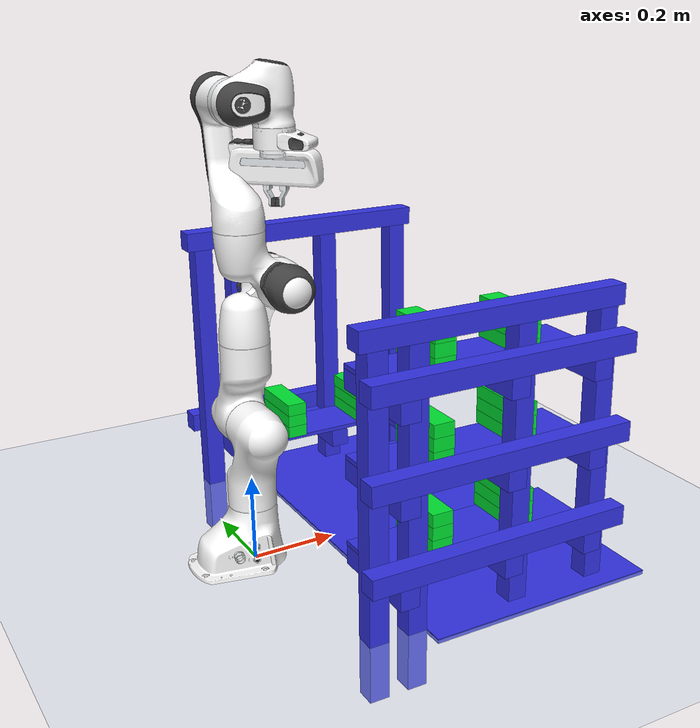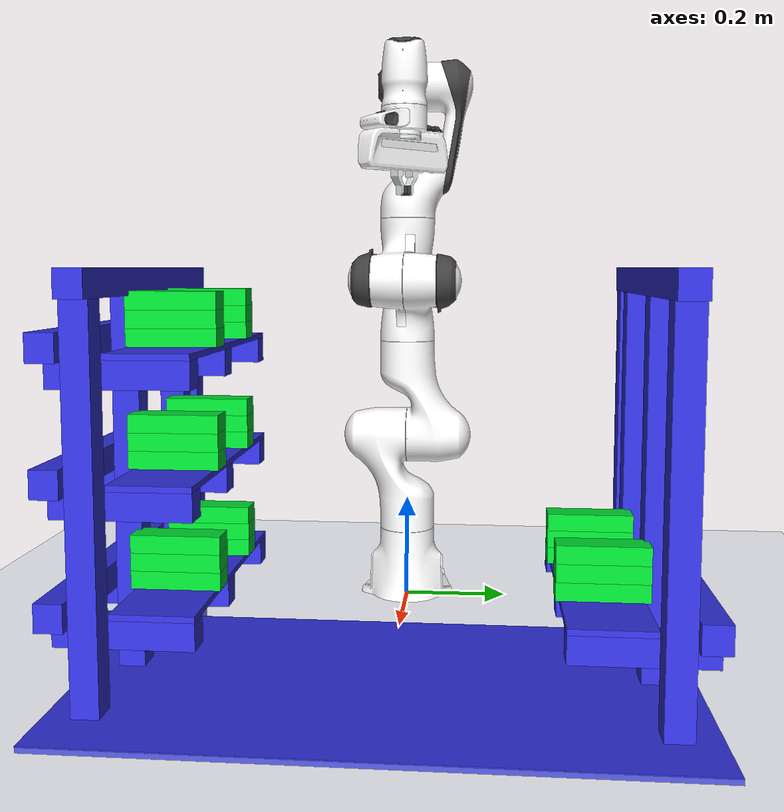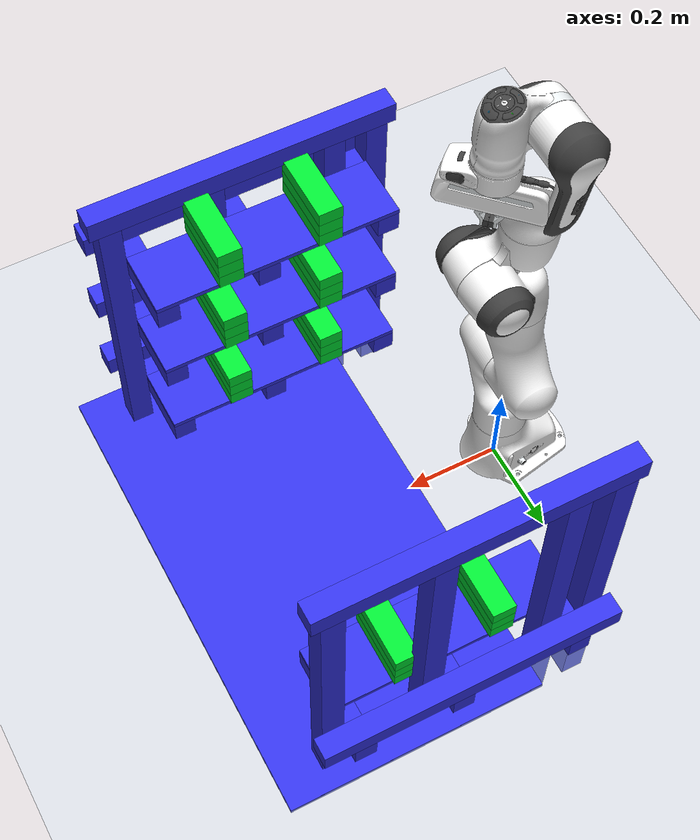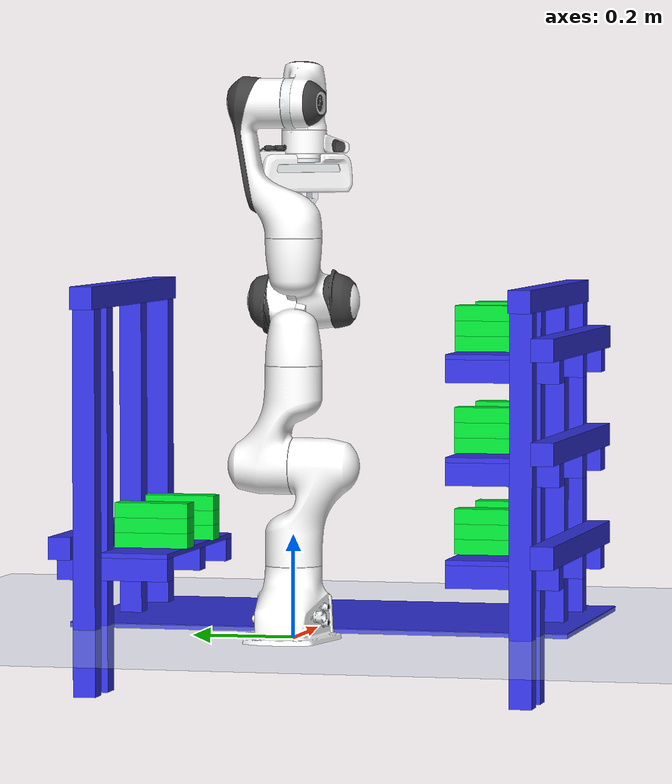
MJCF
<?xml version='1.0' encoding='utf-8'?>
<mujoco model="panda">
  <compiler angle="radian" meshdir="assets" autolimits="true" />

  <option integrator="implicit" />
  <option gravity="0 0 -9.81" />

  <default>
    <default class="panda">
      <material specular="0.5" shininess="0.25" />
      <joint armature="0.1" damping="1" axis="0 0 1" range="-2.8973 2.8973" />
      <general dyntype="none" biastype="none" ctrlrange="-87 87" forcerange="-87 87" />
      <default class="finger">
        <joint axis="0 1 0" type="slide" range="0 0.04" />
      </default>

      <default class="visual">
        <geom type="mesh" contype="0" conaffinity="0" group="2" />
      </default>
      <default class="collision">
        <geom type="mesh" group="3" />
        <default class="fingertip_pad_collision_1">
          <geom type="box" size="0.0085 0.004 0.0085" pos="0 0.0055 0.0445" />
        </default>
        <default class="fingertip_pad_collision_2">
          <geom type="box" size="0.003 0.002 0.003" pos="0.0055 0.002 0.05" />
        </default>
        <default class="fingertip_pad_collision_3">
          <geom type="box" size="0.003 0.002 0.003" pos="-0.0055 0.002 0.05" />
        </default>
        <default class="fingertip_pad_collision_4">
          <geom type="box" size="0.003 0.002 0.0035" pos="0.0055 0.002 0.0395" />
        </default>
        <default class="fingertip_pad_collision_5">
          <geom type="box" size="0.003 0.002 0.0035" pos="-0.0055 0.002 0.0395" />
        </default>
      </default>
    </default>
  </default>

  <asset>
    <material class="panda" name="white" rgba="1 1 1 1" />
    <material class="panda" name="off_white" rgba="0.901961 0.921569 0.929412 1" />
    <material class="panda" name="black" rgba="0.25 0.25 0.25 1" />
    <material class="panda" name="green" rgba="0 1 0 1" />
    <material class="panda" name="light_blue" rgba="0.039216 0.541176 0.780392 1" />

    <mesh name="link0_c" file="link0.stl" />
    <mesh name="link1_c" file="link1.stl" />
    <mesh name="link2_c" file="link2.stl" />
    <mesh name="link3_c" file="link3.stl" />
    <mesh name="link4_c" file="link4.stl" />
    <mesh name="link5_c0" file="link5_collision_0.obj" />
    <mesh name="link5_c1" file="link5_collision_1.obj" />
    <mesh name="link5_c2" file="link5_collision_2.obj" />
    <mesh name="link6_c" file="link6.stl" />
    <mesh name="link7_c" file="link7.stl" />
    <mesh name="hand_c" file="hand.stl" />

    <mesh file="link0_0.obj" />
    <mesh file="link0_1.obj" />
    <mesh file="link0_2.obj" />
    <mesh file="link0_3.obj" />
    <mesh file="link0_4.obj" />
    <mesh file="link0_5.obj" />
    <mesh file="link0_7.obj" />
    <mesh file="link0_8.obj" />
    <mesh file="link0_9.obj" />
    <mesh file="link0_10.obj" />
    <mesh file="link0_11.obj" />
    <mesh file="link1.obj" />
    <mesh file="link2.obj" />
    <mesh file="link3_0.obj" />
    <mesh file="link3_1.obj" />
    <mesh file="link3_2.obj" />
    <mesh file="link3_3.obj" />
    <mesh file="link4_0.obj" />
    <mesh file="link4_1.obj" />
    <mesh file="link4_2.obj" />
    <mesh file="link4_3.obj" />
    <mesh file="link5_0.obj" />
    <mesh file="link5_1.obj" />
    <mesh file="link5_2.obj" />
    <mesh file="link6_0.obj" />
    <mesh file="link6_1.obj" />
    <mesh file="link6_2.obj" />
    <mesh file="link6_3.obj" />
    <mesh file="link6_4.obj" />
    <mesh file="link6_5.obj" />
    <mesh file="link6_6.obj" />
    <mesh file="link6_7.obj" />
    <mesh file="link6_8.obj" />
    <mesh file="link6_9.obj" />
    <mesh file="link6_10.obj" />
    <mesh file="link6_11.obj" />
    <mesh file="link6_12.obj" />
    <mesh file="link6_13.obj" />
    <mesh file="link6_14.obj" />
    <mesh file="link6_15.obj" />
    <mesh file="link6_16.obj" />
    <mesh file="link7_0.obj" />
    <mesh file="link7_1.obj" />
    <mesh file="link7_2.obj" />
    <mesh file="link7_3.obj" />
    <mesh file="link7_4.obj" />
    <mesh file="link7_5.obj" />
    <mesh file="link7_6.obj" />
    <mesh file="link7_7.obj" />
    <mesh file="hand_0.obj" />
    <mesh file="hand_1.obj" />
    <mesh file="hand_2.obj" />
    <mesh file="hand_3.obj" />
    <mesh file="hand_4.obj" />
    <mesh file="finger_0.obj" />
    <mesh file="finger_1.obj" />
  </asset>

  <worldbody>
    <light name="top" pos="0 0 2" mode="trackcom" />
    <body name="link0" childclass="panda">
      <inertial mass="0.629769" pos="-0.041018 -0.00014 0.049974" fullinertia="0.00315 0.00388 0.004285 8.2904e-7 0.00015 8.2299e-6" />
      <geom mesh="link0_0" material="off_white" class="visual" />
      <geom mesh="link0_1" material="black" class="visual" />
      <geom mesh="link0_2" material="off_white" class="visual" />
      <geom mesh="link0_3" material="black" class="visual" />
      <geom mesh="link0_4" material="off_white" class="visual" />
      <geom mesh="link0_5" material="black" class="visual" />
      <geom mesh="link0_7" material="white" class="visual" />
      <geom mesh="link0_8" material="white" class="visual" />
      <geom mesh="link0_9" material="black" class="visual" />
      <geom mesh="link0_10" material="off_white" class="visual" />
      <geom mesh="link0_11" material="white" class="visual" />
      <geom mesh="link0_c" class="collision" />
      <body name="link1" pos="0 0 0.333">
        <inertial mass="4.970684" pos="0.003875 0.002081 -0.04762" fullinertia="0.70337 0.70661 0.0091170 -0.00013900 0.0067720 0.019169" />
        <joint name="joint1" />
        <geom material="white" mesh="link1" class="visual" />
        <geom mesh="link1_c" class="collision" />
        <body name="link2" quat="1 -1 0 0">
          <inertial mass="0.646926" pos="-0.003141 -0.02872 0.003495" fullinertia="0.0079620 2.8110e-2 2.5995e-2 -3.925e-3 1.0254e-2 7.04e-4" />
          <joint name="joint2" range="-1.7628 1.7628" />
          <geom material="white" mesh="link2" class="visual" />
          <geom mesh="link2_c" class="collision" />
          <body name="link3" pos="0 -0.316 0" quat="1 1 0 0">
            <joint name="joint3" />
            <inertial mass="3.228604" pos="2.7518e-2 3.9252e-2 -6.6502e-2" fullinertia="3.7242e-2 3.6155e-2 1.083e-2 -4.761e-3 -1.1396e-2 -1.2805e-2" />
            <geom mesh="link3_0" material="white" class="visual" />
            <geom mesh="link3_1" material="white" class="visual" />
            <geom mesh="link3_2" material="white" class="visual" />
            <geom mesh="link3_3" material="black" class="visual" />
            <geom mesh="link3_c" class="collision" />
            <body name="link4" pos="0.0825 0 0" quat="1 1 0 0">
              <inertial mass="3.587895" pos="-5.317e-2 1.04419e-1 2.7454e-2" fullinertia="2.5853e-2 1.9552e-2 2.8323e-2 7.796e-3 -1.332e-3 8.641e-3" />
              <joint name="joint4" range="-3.0718 -0.0698" />
              <geom mesh="link4_0" material="white" class="visual" />
              <geom mesh="link4_1" material="white" class="visual" />
              <geom mesh="link4_2" material="black" class="visual" />
              <geom mesh="link4_3" material="white" class="visual" />
              <geom mesh="link4_c" class="collision" />
              <body name="link5" pos="-0.0825 0.384 0" quat="1 -1 0 0">
                <inertial mass="1.225946" pos="-1.1953e-2 4.1065e-2 -3.8437e-2" fullinertia="3.5549e-2 2.9474e-2 8.627e-3 -2.117e-3 -4.037e-3 2.29e-4" />
                <joint name="joint5" />
                <geom mesh="link5_0" material="black" class="visual" />
                <geom mesh="link5_1" material="white" class="visual" />
                <geom mesh="link5_2" material="white" class="visual" />
                <geom mesh="link5_c0" class="collision" />
                <geom mesh="link5_c1" class="collision" />
                <geom mesh="link5_c2" class="collision" />
                <body name="link6" quat="1 1 0 0">
                  <inertial mass="1.666555" pos="6.0149e-2 -1.4117e-2 -1.0517e-2" fullinertia="1.964e-3 4.354e-3 5.433e-3 1.09e-4 -1.158e-3 3.41e-4" />
                  <joint name="joint6" range="-0.0175 3.7525" />
                  <geom mesh="link6_0" material="off_white" class="visual" />
                  <geom mesh="link6_1" material="white" class="visual" />
                  <geom mesh="link6_2" material="black" class="visual" />
                  <geom mesh="link6_3" material="white" class="visual" />
                  <geom mesh="link6_4" material="white" class="visual" />
                  <geom mesh="link6_5" material="white" class="visual" />
                  <geom mesh="link6_6" material="white" class="visual" />
                  <geom mesh="link6_7" material="light_blue" class="visual" />
                  <geom mesh="link6_8" material="light_blue" class="visual" />
                  <geom mesh="link6_9" material="black" class="visual" />
                  <geom mesh="link6_10" material="black" class="visual" />
                  <geom mesh="link6_11" material="white" class="visual" />
                  <geom mesh="link6_12" material="green" class="visual" />
                  <geom mesh="link6_13" material="white" class="visual" />
                  <geom mesh="link6_14" material="black" class="visual" />
                  <geom mesh="link6_15" material="black" class="visual" />
                  <geom mesh="link6_16" material="white" class="visual" />
                  <geom mesh="link6_c" class="collision" />
                  <body name="link7" pos="0.088 0 0" quat="1 1 0 0">
                    <inertial mass="7.35522e-01" pos="1.0517e-2 -4.252e-3 6.1597e-2" fullinertia="1.2516e-2 1.0027e-2 4.815e-3 -4.28e-4 -1.196e-3 -7.41e-4" />
                    <joint name="joint7" />
                    <geom mesh="link7_0" material="white" class="visual" />
                    <geom mesh="link7_1" material="black" class="visual" />
                    <geom mesh="link7_2" material="black" class="visual" />
                    <geom mesh="link7_3" material="black" class="visual" />
                    <geom mesh="link7_4" material="black" class="visual" />
                    <geom mesh="link7_5" material="black" class="visual" />
                    <geom mesh="link7_6" material="black" class="visual" />
                    <geom mesh="link7_7" material="white" class="visual" />
                    <geom mesh="link7_c" class="collision" />
                    <body name="hand" pos="0 0 0.107" quat="0.9238795 0 0 -0.3826834">
                      <inertial mass="0.73" pos="-0.01 0 0.03" diaginertia="0.001 0.0025 0.0017" />
                      <geom mesh="hand_0" material="off_white" class="visual" />
                      <geom mesh="hand_1" material="black" class="visual" />
                      <geom mesh="hand_2" material="black" class="visual" />
                      <geom mesh="hand_3" material="white" class="visual" />
                      <geom mesh="hand_4" material="off_white" class="visual" />
                      <geom mesh="hand_c" class="collision" />
                      <body name="left_finger" pos="0 0 0.0584">
                        <inertial mass="0.015" pos="0 0 0" diaginertia="2.375e-6 2.375e-6 7.5e-7" />
                        <joint name="finger_joint1" class="finger" />
                        <geom mesh="finger_0" material="off_white" class="visual" />
                        <geom mesh="finger_1" material="black" class="visual" />
                        <geom mesh="finger_0" class="collision" />
                        <geom class="fingertip_pad_collision_1" />
                        <geom class="fingertip_pad_collision_2" />
                        <geom class="fingertip_pad_collision_3" />
                        <geom class="fingertip_pad_collision_4" />
                        <geom class="fingertip_pad_collision_5" />
                      </body>
                      <body name="right_finger" pos="0 0 0.0584" quat="0 0 0 1">
                        <inertial mass="0.015" pos="0 0 0" diaginertia="2.375e-6 2.375e-6 7.5e-7" />
                        <joint name="finger_joint2" class="finger" />
                        <geom mesh="finger_0" material="off_white" class="visual" />
                        <geom mesh="finger_1" material="black" class="visual" />
                        <geom mesh="finger_0" class="collision" />
                        <geom class="fingertip_pad_collision_1" />
                        <geom class="fingertip_pad_collision_2" />
                        <geom class="fingertip_pad_collision_3" />
                        <geom class="fingertip_pad_collision_4" />
                        <geom class="fingertip_pad_collision_5" />
                      </body>
                    </body>
                  </body>
                </body>
              </body>
            </body>
          </body>
        </body>
      </body>
    </body>
    <geom name="ground" type="plane" size="3 3 0.1" rgba="0.8 0.9 1 1" />

  <body name="TablePlane" pos="0.4600000000000001 0.0 -0.005"><geom type="box" density="20" size="0.275 0.504 0.0051" rgba="0.2 0.2 0.9 1.0" /></body><body name="LShelfDistal" pos="0.6225000000000002 0.4365 0.315"><geom type="box" density="20" size="0.0225 0.0225 0.315" rgba="0.2 0.2 0.9 1.0" /></body><body name="LShelfProximal" pos="0.16250000000000006 0.4365 0.2475"><geom type="box" density="20" size="0.0225 0.0225 0.3825" rgba="0.2 0.2 0.9 1.0" /></body><body name="LShelfBack" pos="0.07250000000000006 0.4365 0.2475"><geom type="box" density="20" size="0.0225 0.0225 0.3825" rgba="0.2 0.2 0.9 1.0" /></body><body name="LShelfMid" pos="0.4150000000000001 0.4365 0.315"><geom type="box" density="20" size="0.0225 0.0225 0.315" rgba="0.2 0.2 0.9 1.0" /></body><body name="LShelfArch" pos="0.3475000000000001 0.4365 0.6525"><geom type="box" density="20" size="0.315 0.0225 0.0225" rgba="0.2 0.2 0.9 1.0" /></body><body name="LShelfBottom" pos="0.3475000000000001 0.34650000000000003 0.14250000000000002"><geom type="box" density="20" size="0.2525 0.0675 0.005" rgba="0.2 0.2 0.9 1.0" /></body><body name="LShelfBottomSupp1" pos="0.11750000000000006 0.3915 0.11500000000000002"><geom type="box" density="20" size="0.0225 0.1125 0.0225" rgba="0.2 0.2 0.9 1.0" /></body><body name="LShelfBottomSupp2" pos="0.3700000000000001 0.3915 0.11500000000000002"><geom type="box" density="20" size="0.0225 0.1125 0.0225" rgba="0.2 0.2 0.9 1.0" /></body><body name="LShelfBottomSupp3" pos="0.5775000000000001 0.3915 0.11500000000000002"><geom type="box" density="20" size="0.0225 0.1125 0.0225" rgba="0.2 0.2 0.9 1.0" /></body><body name="LShelfBottomSuppB" pos="0.3475000000000001 0.4815 0.16"><geom type="box" density="20" size="0.315 0.0225 0.0225" rgba="0.2 0.2 0.9 1.0" /></body><body name="RShelfDistal" pos="0.6225000000000002 -0.4365 0.315"><geom type="box" density="20" size="0.0225 0.0225 0.315" rgba="0.2 0.2 0.9 1.0" /></body><body name="RShelfProximal" pos="0.16250000000000006 -0.4365 0.2475"><geom type="box" density="20" size="0.0225 0.0225 0.3825" rgba="0.2 0.2 0.9 1.0" /></body><body name="RShelfBack" pos="0.07250000000000006 -0.4365 0.2475"><geom type="box" density="20" size="0.0225 0.0225 0.3825" rgba="0.2 0.2 0.9 1.0" /></body><body name="RShelfMid" pos="0.4150000000000001 -0.4365 0.315"><geom type="box" density="20" size="0.0225 0.0225 0.315" rgba="0.2 0.2 0.9 1.0" /></body><body name="RShelfArch" pos="0.3475000000000001 -0.4365 0.6525"><geom type="box" density="20" size="0.315 0.0225 0.0225" rgba="0.2 0.2 0.9 1.0" /></body><body name="RShelfBottom" pos="0.3475000000000001 -0.34650000000000003 0.14250000000000002"><geom type="box" density="20" size="0.2525 0.0675 0.005" rgba="0.2 0.2 0.9 1.0" /></body><body name="RShelfBottomSupp1" pos="0.11750000000000006 -0.3915 0.11500000000000002"><geom type="box" density="20" size="0.0225 0.1125 0.0225" rgba="0.2 0.2 0.9 1.0" /></body><body name="RShelfBottomSupp2" pos="0.3700000000000001 -0.3915 0.11500000000000002"><geom type="box" density="20" size="0.0225 0.1125 0.0225" rgba="0.2 0.2 0.9 1.0" /></body><body name="RShelfBottomSupp3" pos="0.5775000000000001 -0.3915 0.11500000000000002"><geom type="box" density="20" size="0.0225 0.1125 0.0225" rgba="0.2 0.2 0.9 1.0" /></body><body name="RShelfBottomSuppB" pos="0.3475000000000001 -0.4815 0.16"><geom type="box" density="20" size="0.315 0.0225 0.0225" rgba="0.2 0.2 0.9 1.0" /></body><body name="RShelfMiddle" pos="0.3475000000000001 -0.34650000000000003 0.3425"><geom type="box" density="20" size="0.2525 0.0675 0.005" rgba="0.2 0.2 0.9 1.0" /></body><body name="RShelfMiddleSupp1" pos="0.11750000000000006 -0.3915 0.31500000000000006"><geom type="box" density="20" size="0.0225 0.1125 0.0225" rgba="0.2 0.2 0.9 1.0" /></body><body name="RShelfMiddleSupp2" pos="0.3700000000000001 -0.3915 0.31500000000000006"><geom type="box" density="20" size="0.0225 0.1125 0.0225" rgba="0.2 0.2 0.9 1.0" /></body><body name="RShelfMiddleSupp3" pos="0.5775000000000001 -0.3915 0.31500000000000006"><geom type="box" density="20" size="0.0225 0.1125 0.0225" rgba="0.2 0.2 0.9 1.0" /></body><body name="RShelfMiddleSuppB" pos="0.3475000000000001 -0.4815 0.36"><geom type="box" density="20" size="0.315 0.0225 0.0225" rgba="0.2 0.2 0.9 1.0" /></body><body name="RShelfTop" pos="0.3475000000000001 -0.34650000000000003 0.5425"><geom type="box" density="20" size="0.2525 0.0675 0.005" rgba="0.2 0.2 0.9 1.0" /></body><body name="RShelfTopSupp1" pos="0.11750000000000006 -0.3915 0.515"><geom type="box" density="20" size="0.0225 0.1125 0.0225" rgba="0.2 0.2 0.9 1.0" /></body><body name="RShelfTopSupp2" pos="0.3700000000000001 -0.3915 0.515"><geom type="box" density="20" size="0.0225 0.1125 0.0225" rgba="0.2 0.2 0.9 1.0" /></body><body name="RShelfTopSupp3" pos="0.5775000000000001 -0.3915 0.515"><geom type="box" density="20" size="0.0225 0.1125 0.0225" rgba="0.2 0.2 0.9 1.0" /></body><body name="RShelfTopSuppB" pos="0.3475000000000001 -0.4815 0.56"><geom type="box" density="20" size="0.315 0.0225 0.0225" rgba="0.2 0.2 0.9 1.0" /></body><body name="LBottomFar1" pos="0.45000000000000007 0.34650000000000003 0.16250000000000003"><geom type="box" density="20" size="0.025 0.075 0.015" rgba="0.0 0.9 0.2 1.0" /><freejoint /></body><body name="LBottomFar2" pos="0.45000000000000007 0.34650000000000003 0.1925"><geom type="box" density="20" size="0.025 0.075 0.015" rgba="0.0 0.9 0.2 1.0" /><freejoint /></body><body name="LBottomFar3" pos="0.45000000000000007 0.34650000000000003 0.22250000000000003"><geom type="box" density="20" size="0.025 0.075 0.015" rgba="0.0 0.9 0.2 1.0" /><freejoint /></body><body name="LBottomClose1" pos="0.24500000000000008 0.34650000000000003 0.16250000000000003"><geom type="box" density="20" size="0.025 0.075 0.015" rgba="0.0 0.9 0.2 1.0" /><freejoint /></body><body name="LBottomClose2" pos="0.24500000000000008 0.34650000000000003 0.1925"><geom type="box" density="20" size="0.025 0.075 0.015" rgba="0.0 0.9 0.2 1.0" /><freejoint /></body><body name="LBottomClose3" pos="0.24500000000000008 0.34650000000000003 0.22250000000000003"><geom type="box" density="20" size="0.025 0.075 0.015" rgba="0.0 0.9 0.2 1.0" /><freejoint /></body><body name="RBottomFar1" pos="0.45000000000000007 -0.34650000000000003 0.16250000000000003"><geom type="box" density="20" size="0.025 0.075 0.015" rgba="0.0 0.9 0.2 1.0" /><freejoint /></body><body name="RBottomFar2" pos="0.45000000000000007 -0.34650000000000003 0.1925"><geom type="box" density="20" size="0.025 0.075 0.015" rgba="0.0 0.9 0.2 1.0" /><freejoint /></body><body name="RBottomFar3" pos="0.45000000000000007 -0.34650000000000003 0.22250000000000003"><geom type="box" density="20" size="0.025 0.075 0.015" rgba="0.0 0.9 0.2 1.0" /><freejoint /></body><body name="RBottomClose1" pos="0.24500000000000008 -0.34650000000000003 0.16250000000000003"><geom type="box" density="20" size="0.025 0.075 0.015" rgba="0.0 0.9 0.2 1.0" /><freejoint /></body><body name="RBottomClose2" pos="0.24500000000000008 -0.34650000000000003 0.1925"><geom type="box" density="20" size="0.025 0.075 0.015" rgba="0.0 0.9 0.2 1.0" /><freejoint /></body><body name="RBottomClose3" pos="0.24500000000000008 -0.34650000000000003 0.22250000000000003"><geom type="box" density="20" size="0.025 0.075 0.015" rgba="0.0 0.9 0.2 1.0" /><freejoint /></body><body name="RMiddleFar1" pos="0.45000000000000007 -0.34650000000000003 0.36250000000000004"><geom type="box" density="20" size="0.025 0.075 0.015" rgba="0.0 0.9 0.2 1.0" /><freejoint /></body><body name="RMiddleFar2" pos="0.45000000000000007 -0.34650000000000003 0.3925"><geom type="box" density="20" size="0.025 0.075 0.015" rgba="0.0 0.9 0.2 1.0" /><freejoint /></body><body name="RMiddleFar3" pos="0.45000000000000007 -0.34650000000000003 0.42250000000000004"><geom type="box" density="20" size="0.025 0.075 0.015" rgba="0.0 0.9 0.2 1.0" /><freejoint /></body><body name="RMiddleClose1" pos="0.24500000000000008 -0.34650000000000003 0.36250000000000004"><geom type="box" density="20" size="0.025 0.075 0.015" rgba="0.0 0.9 0.2 1.0" /><freejoint /></body><body name="RMiddleClose2" pos="0.24500000000000008 -0.34650000000000003 0.3925"><geom type="box" density="20" size="0.025 0.075 0.015" rgba="0.0 0.9 0.2 1.0" /><freejoint /></body><body name="RMiddleClose3" pos="0.24500000000000008 -0.34650000000000003 0.42250000000000004"><geom type="box" density="20" size="0.025 0.075 0.015" rgba="0.0 0.9 0.2 1.0" /><freejoint /></body><body name="RTopFar1" pos="0.45000000000000007 -0.34650000000000003 0.5625"><geom type="box" density="20" size="0.025 0.075 0.015" rgba="0.0 0.9 0.2 1.0" /><freejoint /></body><body name="RTopFar2" pos="0.45000000000000007 -0.34650000000000003 0.5925"><geom type="box" density="20" size="0.025 0.075 0.015" rgba="0.0 0.9 0.2 1.0" /><freejoint /></body><body name="RTopFar3" pos="0.45000000000000007 -0.34650000000000003 0.6224999999999999"><geom type="box" density="20" size="0.025 0.075 0.015" rgba="0.0 0.9 0.2 1.0" /><freejoint /></body><body name="RTopClose1" pos="0.24500000000000008 -0.34650000000000003 0.5625"><geom type="box" density="20" size="0.025 0.075 0.015" rgba="0.0 0.9 0.2 1.0" /><freejoint /></body><body name="RTopClose2" pos="0.24500000000000008 -0.34650000000000003 0.5925"><geom type="box" density="20" size="0.025 0.075 0.015" rgba="0.0 0.9 0.2 1.0" /><freejoint /></body><body name="RTopClose3" pos="0.24500000000000008 -0.34650000000000003 0.6224999999999999"><geom type="box" density="20" size="0.025 0.075 0.015" rgba="0.0 0.9 0.2 1.0" /><freejoint /></body></worldbody>

  <tendon>
    <fixed name="split">
      <joint joint="finger_joint1" coef="0.5" />
      <joint joint="finger_joint2" coef="0.5" />
    </fixed>
  </tendon>

  <equality>
    <joint joint1="finger_joint1" joint2="finger_joint2" solimp="0.95 0.99 0.001" solref="0.005 1" />
  </equality>

  <actuator>
    <general class="panda" name="actuator1" joint="joint1" gainprm="1" />
    <general class="panda" name="actuator2" joint="joint2" gainprm="1" />
    <general class="panda" name="actuator3" joint="joint3" gainprm="1" />
    <general class="panda" name="actuator4" joint="joint4" gainprm="1" />
    <general class="panda" name="actuator5" joint="joint5" gainprm="1" ctrlrange="-12 12" forcerange="-12 12" />
    <general class="panda" name="actuator6" joint="joint6" gainprm="1" forcerange="-12 12" ctrlrange="-12 12" />
    <general class="panda" name="actuator7" joint="joint7" gainprm="1" ctrlrange="-12 12" forcerange="-12 12" />
    <position name="actuator8" tendon="split" ctrlrange="0.005 0.04" kp="400" />
  </actuator>

</mujoco>
